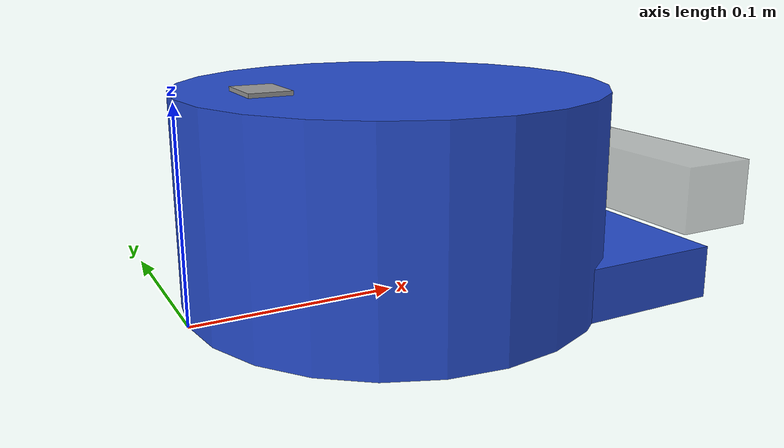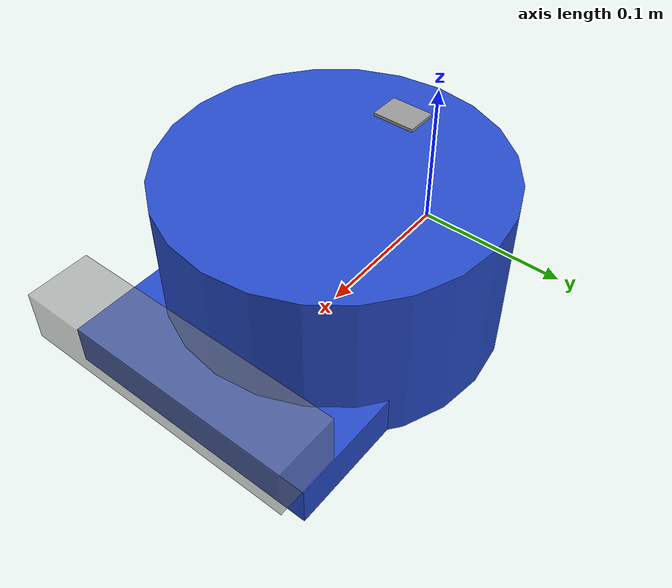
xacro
<?xml version="1.0"?>
<robot
    xmlns:xacro="http://www.ros.org/wiki/xacro"
    name="zelmet">

    <xacro:include filename="$(find zelmet)/urdf/sensors/zed.urdf.xacro" />
    <xacro:include filename="$(find zelmet)/urdf/sensors/um7.urdf.xacro" />

    <!-- Note: Base Link is the back of the skull, right where the Zelmet strap is. -->

    <!-- Physical Constant Macros -->
    <xacro:property name="M_PI"    value="3.1415926535897931" />
    <xacro:property name="M_41deg" value="0.7155849933176751265387132150803312" />
    <xacro:property name="M_16deg" value="0.279252680319092732307790522958" />

    <!-- IMU placement relative to base_link -->
    <xacro:property name="imu_x" value=".0381" />
    <xacro:property name="imu_y" value="0" />
    <xacro:property name="imu_z" value=".1016" />

    <xacro:property name="imu_roll" value="0" />
    <xacro:property name="imu_pitch" value="0" />
    <xacro:property name="imu_yaw" value="0" />

     <!-- ZED placement relative to base_link -->
    <xacro:property name="zed_x" value="0.2286" />
    <xacro:property name="zed_y" value="0.0" />
    <xacro:property name="zed_z" value="0.0508" />

    <xacro:property name="zed_roll" value="0" />
    <xacro:property name="zed_pitch" value="0" />
    <xacro:property name="zed_yaw" value="0" />

    <!-- Main body of Helmet -->
    <link name="helmet_link">
        <inertial>
            <mass value="0.162" />
            <origin xyz="0 0 0" />
            <inertia  ixx="0.2" ixy="0.0"  ixz="0.0"  iyy="0.2"  iyz="0.0"  izz="0.2" />
        </inertial>
        <visual>
            <origin xyz="0.1016 0 0.0508" rpy="0 0 0" />
            <geometry>
                 <cylinder radius="0.1016" length="0.1016" />
             </geometry>
            <material name="Blue"/>
        </visual>
        <collision>
            <origin xyz="0.1016 0 0.0508" rpy="0 0 0" />
            <geometry>
                 <cylinder radius="0.1016" length="0.1016" />
             </geometry>
        </collision>
    </link>

    <!-- Visor -->
    <joint name="visor_joint" type="fixed" >
        <parent link="helmet_link" />
        <child link="visor_link" />
    </joint>
	<link name="visor_link">
        <visual>
            <origin xyz="0.1778 0 0.0127" rpy="0 0 0" />
            <geometry>
                 <box size=".1016 .1651 .0254" />
             </geometry>
            <material name="Blue"/>
        </visual>
        <collision>
            <origin xyz="0.1778 0 0.0127" rpy="0 0 0" />
            <geometry>
                 <box size=".1016 .1651 .0254" />
             </geometry>
        </collision>
    </link>

    <!-- IMU -->
    <xacro:um7_imu_v0
        name="imu_zelmet"
        parent="helmet_link">
        <origin
            xyz="${imu_x} ${imu_y} ${imu_z}"
            rpy="${imu_roll} ${imu_pitch} ${imu_yaw}" />
    </xacro:um7_imu_v0>

    <!-- ZED -->
    <xacro:zed_v0
        name="zed"
        parent="helmet_link">
        <origin
            xyz="${zed_x} ${zed_y} ${zed_z}"
            rpy="${zed_roll} ${zed_pitch} ${zed_yaw}" />
    </xacro:zed_v0>

</robot>

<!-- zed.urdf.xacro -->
<robot xmlns:xacro="http://ros.org/wiki/xacro">

  <property name="zed_cam_separation" value="0.12065" />

  <!-- Stereolabs ZED sensor macro -->
  <xacro:macro name="zed_v0" params="name parent *origin">

    <!-- ZED -->
    <joint name="zed_joint" type="fixed">
       <insert_block name="origin" />
      <parent link="${parent}"/>
        <child link="zed_link"/>
    </joint>
    <link name="zed_link" type="fixed">
        <inertial>
            <mass value="0.2" />
            <origin xyz="0 0 0" />
            <inertia  ixx="0.2" ixy="0.0"  ixz="0.0"  iyy="0.2"  iyz="0.0"  izz="0.2" />
        </inertial>
        <visual>
            <origin xyz="0 0 0" rpy="0 0 0" />
            <geometry>
                <box size="0.0381 0.1717 0.0317" /> <!-- ZED dimensions -->
            </geometry>
            <material name="ZEDGrey">
              <color rgba="0.5 0.5 0.5 0.5"/>
            </material>
          </visual>
        <collision>
            <origin xyz="0 0 0" rpy="0 0 0" />
            <geometry>
                <box size="0.0381 0.1717 0.0317" />
            </geometry>
        </collision>
    </link>

    <!-- optical rotation -->
    <joint name="zed_optical_joint" type="fixed">
        <origin xyz="${0.0381/2} 0 0" rpy="${-M_PI/2} 0 ${-M_PI/2}" />
        <parent link="zed_link"/>
        <child link="zed_optical_frame"/>
    </joint>
    <link name="zed_optical_frame" />

    <!-- left camera -->
    <joint name="zed_left_camera_joint" type="fixed">
        <origin xyz="${0.0381/2} ${zed_cam_separation/2} 0" rpy="0 0 0" />
        <parent link="zed_link"/>
        <child link="left_camera_link"/>
    </joint>
    <link name="left_camera_link" />

    <joint name="left_optical_joint" type="fixed">
        <origin xyz="0 0 0" rpy="${-M_PI/2} 0 ${-M_PI/2}" />
        <parent link="left_camera_link"/>
        <child link="left_optical_frame"/>
    </joint>
    <link name="left_optical_frame" type="fixed" />

    <!-- right camera -->
    <joint name="zed_right_camera_joint" type="fixed">
        <origin xyz="${0.0381/2} -${zed_cam_separation/2} 0" rpy="0 0 0" />
        <parent link="zed_link"/>
        <child link="right_camera_link"/>
    </joint>
    <link name="right_camera_link" />

    <joint name="right_optical_joint" type="fixed">
        <origin xyz="0 0 0" rpy="${-M_PI/2} 0 ${-M_PI/2}" />
        <parent link="right_camera_link"/>
        <child link="right_optical_frame"/>
    </joint>
    <link name="right_optical_frame" />

  </xacro:macro>

</robot>

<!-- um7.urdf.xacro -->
<robot xmlns:xacro="http://ros.org/wiki/xacro">

  <!-- UM7 IMU sensor macro -->
  <xacro:macro name="um7_imu_v0" params="name parent *origin">

    <joint name="${name}_joint" type="fixed">
        <insert_block name="origin" />
        <parent link="${parent}"/>
        <child link="${name}_link"/>
    </joint>
    <link name="${name}_link" type="fixed">
                <inertial>
            <mass value="0.01" />
            <origin xyz="0 0 0" />
            <inertia  ixx="0.2" ixy="0.0"  ixz="0.0"  iyy="0.2"  iyz="0.0"  izz="0.2" />
        </inertial>
        <visual>
            <origin xyz="0 0 0" rpy="0 0 0" />
            <geometry>
                <box size="0.02 0.027 0.004" /> <!-- IMU dimensions -->
            </geometry>
            <material name="Grey"/>
        </visual>
        <collision>
            <origin xyz="0 0 0" rpy="0 0 0" />
            <geometry>
                <box size="0.02 0.027 0.004" />
            </geometry>
        </collision>
    </link>

  </xacro:macro>

</robot>
